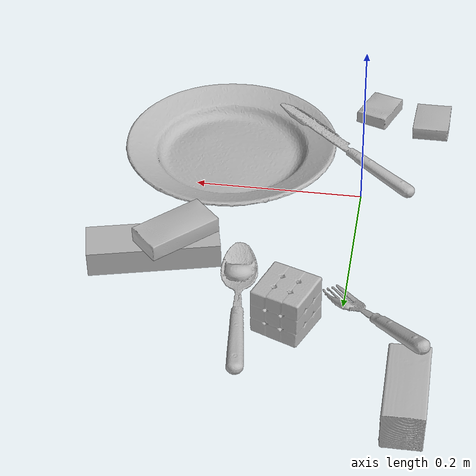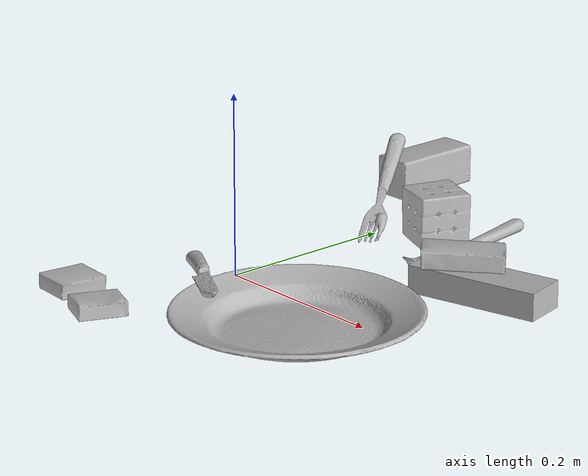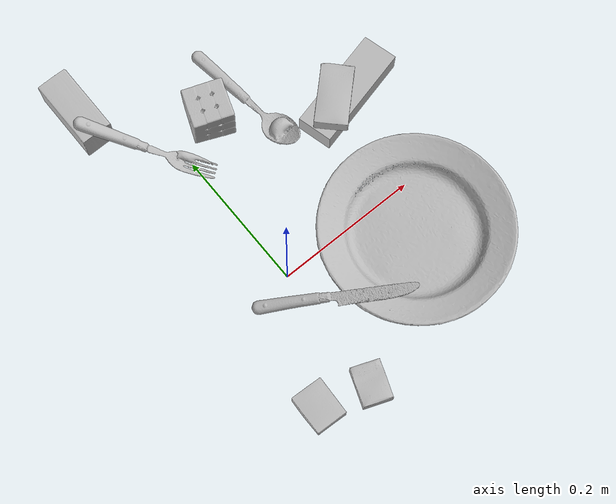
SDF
<sdf version="1.4">
  <world name="default">
    <light name="light1" type="point">
      <pose>0 0 1 0 0 0</pose>
      <diffuse>3 3 3 1</diffuse>
      <specular>3 3 3 1</specular>
    </light>
    <light name="light2" type="point">
      <pose>0 0.5 2 0 0 0</pose>
      <diffuse>1 1 1 1</diffuse>
      <specular>1 1 1 1</specular>
    </light>
    <light name="light3" type="point">
      <pose>0 0.5 2 0 0 0</pose>
      <diffuse>3 3 3 1</diffuse>
      <specular>3 3 3 1</specular>
    </light>
    <scene>
      <ambient>0.7 0.7 0.7</ambient>
    </scene>
    <model name="box11">
      <link name="link_box11">
        <collision name="default">
          <geometry>
            <mesh>
              <uri>model://cracker_box/collision_meshes/collision.obj</uri>
              <scale>0.25 0.25 0.25</scale>
            </mesh>
          </geometry>
          <surface>
            <friction>
              <ode>
                <mu>0.5</mu>
                <mu2>0.5</mu2>
              </ode>
            </friction>
          <contact>
        <ode>
            <max_vel>0</max_vel>
            <min_depth>0.0001</min_depth>
            <kp>1e8</kp>
        </ode>
    </contact></surface>
        </collision>
        <visual name="default">
          <geometry>
            <mesh>
              <uri>model://cracker_box/visual_meshes/visual.dae</uri>
              <scale>0.25 0.25 0.25</scale>
            </mesh>
          </geometry>
        </visual>
        <inertial>
          <mass>0.022244147956371307</mass>
          <pose>0.00023660442093387246 6.358561950037256e-05 -0.00042573834070935845 -0.00031620774024180285 -0.011106489600345375 0.0025467943041161943</pose>
          <inertia>
            <ixx>3.5361988e-06</ixx>
            <iyy>5.838959e-06</iyy>
            <izz>8.33273e-06</izz>
            <ixy>0</ixy>
            <ixz>0</ixz>
            <iyz>0</iyz>
          </inertia>
        </inertial>
      </link>
      <pose>-0.007868805900216103 -0.17541806399822235 0.00909603014588356 -0.014049610790716077 -0.005016619297371106 -1.935342344917872</pose>
    </model>
    <model name="box12">
      <link name="link_box12">
        <collision name="default">
          <geometry>
            <mesh>
              <uri>model://wood_block/collision_meshes/collision.obj</uri>
              <scale>0.5 0.5 0.5</scale>
            </mesh>
          </geometry>
          <surface>
            <friction>
              <ode>
                <mu>0.5</mu>
                <mu2>0.5</mu2>
              </ode>
            </friction>
          <contact>
        <ode>
            <max_vel>0</max_vel>
            <min_depth>0.0001</min_depth>
            <kp>1e8</kp>
        </ode>
    </contact></surface>
        </collision>
        <visual name="default">
          <geometry>
            <mesh>
              <uri>model://wood_block/visual_meshes/visual.dae</uri>
              <scale>0.5 0.5 0.5</scale>
            </mesh>
          </geometry>
        </visual>
        <inertial>
          <mass>0.19826212525367737</mass>
          <pose>-2.9066577553749084e-06 -0.00028540476341731846 0.00013204291462898254 -0.05221087153268513 -0.0051926957009938435 -0.006861378574469354</pose>
          <inertia>
            <ixx>6.632619e-05</ixx>
            <iyy>0.00020952444</iyy>
            <izz>0.0002087407</izz>
            <ixy>0</ixy>
            <ixz>0</ixz>
            <iyz>0</iyz>
          </inertia>
        </inertial>
      </link>
      <pose>-0.0777939185500145 0.3483465015888214 0.022629275918006897 -0.00520882156290259 0.005718759426859827 1.574544739087287</pose>
    </model>
    <model name="box13">
      <link name="link_box13">
        <collision name="default">
          <geometry>
            <mesh>
              <uri>model://pudding_box/collision_meshes/collision.obj</uri>
              <scale>0.5 0.5 0.5</scale>
            </mesh>
          </geometry>
          <surface>
            <friction>
              <ode>
                <mu>0.5</mu>
                <mu2>0.5</mu2>
              </ode>
            </friction>
          <contact>
        <ode>
            <max_vel>0</max_vel>
            <min_depth>0.0001</min_depth>
            <kp>1e8</kp>
        </ode>
    </contact></surface>
        </collision>
        <visual name="default">
          <geometry>
            <mesh>
              <uri>model://pudding_box/visual_meshes/visual.dae</uri>
              <scale>0.5 0.5 0.5</scale>
            </mesh>
          </geometry>
        </visual>
        <inertial>
          <mass>0.049741584807634354</mass>
          <pose>0.00024474109522998333 0.0004033942532259971 -0.0002594413817860186 0.005213101800084814 -0.006603799174386178 0.020079821432586128</pose>
          <inertia>
            <ixx>1.4057575e-05</ixx>
            <iyy>9.458037e-06</iyy>
            <izz>2.0759684e-05</izz>
            <ixy>0</ixy>
            <ixz>0</ixz>
            <iyz>0</iyz>
          </inertia>
        </inertial>
      </link>
      <pose>-0.07648719102144241 -0.15600168704986572 0.009862899780273438 0.022348495898457166 -0.01139171475929281 3.093349490024952</pose>
    </model>
    <model name="box21">
      <link name="link_box21">
        <collision name="default">
          <geometry>
            <mesh>
              <uri>model://rubiks_cube/collision_meshes/collision.obj</uri>
              <scale>1.0 1.0 1.0</scale>
            </mesh>
          </geometry>
          <surface>
            <friction>
              <ode>
                <mu>0.5</mu>
                <mu2>0.5</mu2>
              </ode>
            </friction>
          <contact>
        <ode>
            <max_vel>0</max_vel>
            <min_depth>0.0001</min_depth>
            <kp>1e8</kp>
        </ode>
    </contact></surface>
        </collision>
        <visual name="default">
          <geometry>
            <mesh>
              <uri>model://rubiks_cube/visual_meshes/visual.dae</uri>
              <scale>1.0 1.0 1.0</scale>
            </mesh>
          </geometry>
        </visual>
        <inertial>
          <mass>0.14589080214500427</mass>
          <pose>2.6721043468569405e-05 5.256966323941015e-05 -7.264316082000732e-06 -0.054672881442690106 -0.09814117646273159 -0.034455034483302956</pose>
          <inertia>
            <ixx>8.061447e-05</ixx>
            <iyy>8.023852e-05</iyy>
            <izz>8.128248e-05</izz>
            <ixy>0</ixy>
            <ixz>0</ixz>
            <iyz>0</iyz>
          </inertia>
        </inertial>
      </link>
      <pose>0.05809491127729416 0.23618344962596893 0.02867893874645233 -5.294563298571408e-06 -1.906907796611846e-06 -0.35262796823009623</pose>
    </model>
    <model name="box22">
      <link name="link_box22">
        <collision name="default">
          <geometry>
            <mesh>
              <uri>model://jenga/collision_meshes/collision.obj</uri>
              <scale>1.0 1.0 1.0</scale>
            </mesh>
          </geometry>
          <surface>
            <friction>
              <ode>
                <mu>0.5</mu>
                <mu2>0.5</mu2>
              </ode>
            </friction>
          <contact>
        <ode>
            <max_vel>0</max_vel>
            <min_depth>0.0001</min_depth>
            <kp>1e8</kp>
        </ode>
    </contact></surface>
        </collision>
        <visual name="default">
          <geometry>
            <mesh>
              <uri>model://jenga/visual_meshes/visual.dae</uri>
              <scale>1.0 1.0 1.0</scale>
            </mesh>
          </geometry>
        </visual>
        <inertial>
          <mass>0.13963866233825684</mass>
          <pose>-2.502855807051674e-07 -0.00010250010382151231 -4.092339804628864e-05 0.0 -7.342154049184251e-07 0.0</pose>
          <inertia>
            <ixx>3.8641407e-05</ixx>
            <iyy>0.00026183313</iyy>
            <izz>0.00027952914</izz>
            <ixy>0</ixy>
            <ixz>0</ixz>
            <iyz>0</iyz>
          </inertia>
        </inertial>
      </link>
      <pose>0.22237759828567505 0.14600561559200287 0.015000051818788052 3.0359535335891874e-06 -1.9322109338654457e-07 0.24883408481923694</pose>
    </model>
    <model name="box23">
      <link name="link_box23">
        <collision name="default">
          <geometry>
            <mesh>
              <uri>model://sugar_box/collision_meshes/collision.obj</uri>
              <scale>0.5 0.5 0.5</scale>
            </mesh>
          </geometry>
          <surface>
            <friction>
              <ode>
                <mu>0.5</mu>
                <mu2>0.5</mu2>
              </ode>
            </friction>
          <contact>
        <ode>
            <max_vel>0</max_vel>
            <min_depth>0.0001</min_depth>
            <kp>1e8</kp>
        </ode>
    </contact></surface>
        </collision>
        <visual name="default">
          <geometry>
            <mesh>
              <uri>model://sugar_box/visual_meshes/visual.dae</uri>
              <scale>0.5 0.5 0.5</scale>
            </mesh>
          </geometry>
        </visual>
        <inertial>
          <mass>0.09426560252904892</mass>
          <pose>0.0005171863595023751 1.924554817378521e-05 -0.00018182402709499002 -0.00040462606744182556 0.0010506635219056535 0.0026153790218759383</pose>
          <inertia>
            <ixx>1.963546e-05</ixx>
            <iyy>6.346583e-05</iyy>
            <izz>7.597618e-05</izz>
            <ixy>0</ixy>
            <ixz>0</ixz>
            <iyz>0</iyz>
          </inertia>
        </inertial>
      </link>
      <pose>0.1962524950504303 0.1433410793542862 0.04139920324087143 0.0007370428033226415 -0.023425180249617504 -2.3812670562151146</pose>
    </model>
    <model name="plate1">
      <link name="link_plate1">
        <collision name="default">
          <geometry>
            <mesh>
              <uri>model://plate/collision_meshes/collision.obj</uri>
              <scale>1.0 1.0 1.0</scale>
            </mesh>
          </geometry>
          <surface>
            <friction>
              <ode>
                <mu>0.5</mu>
                <mu2>0.5</mu2>
              </ode>
            </friction>
          <contact>
        <ode>
            <max_vel>0</max_vel>
            <min_depth>0.0001</min_depth>
            <kp>1e8</kp>
        </ode>
    </contact></surface>
        </collision>
        <visual name="default">
          <geometry>
            <mesh>
              <uri>model://plate/visual_meshes/visual.dae</uri>
              <scale>1.0 1.0 1.0</scale>
            </mesh>
          </geometry>
        </visual>
        <inertial>
          <mass>0.11197491735219955</mass>
          <pose>-0.0006044617621228099 0.00027825823053717613 -0.001056199544109404 0.00221882520869589 -0.003225452482750881 0.45259630068278056</pose>
          <inertia>
            <ixx>0.0005238209</ixx>
            <iyy>0.00051881076</iyy>
            <izz>0.0010245154</izz>
            <ixy>0</ixy>
            <ixz>0</ixz>
            <iyz>0</iyz>
          </inertia>
        </inertial>
      </link>
      <pose>0.16665959358215332 -0.05853996425867081 0.01373299490660429 -4.0518355003822464e-08 -1.9449853582151868e-07 -0.4213658771966097</pose>
    </model>
    <model name="silverware1">
      <link name="link_silverware1">
        <collision name="default">
          <geometry>
            <mesh>
              <uri>model://knife/collision_meshes/collision.obj</uri>
              <scale>1.0 1.0 1.0</scale>
            </mesh>
          </geometry>
          <surface>
            <friction>
              <ode>
                <mu>0.5</mu>
                <mu2>0.5</mu2>
              </ode>
            </friction>
          <contact>
        <ode>
            <max_vel>0</max_vel>
            <min_depth>0.0001</min_depth>
            <kp>1e8</kp>
        </ode>
    </contact></surface>
        </collision>
        <visual name="default">
          <geometry>
            <mesh>
              <uri>model://knife/visual_meshes/visual.dae</uri>
              <scale>1.0 1.0 1.0</scale>
            </mesh>
          </geometry>
        </visual>
        <inertial>
          <mass>0.01465720683336258</mass>
          <pose>-0.023785248398780823 0.0015275123296305537 5.062019408796914e-05 0.07304601322977639 0.017248415474028462 -0.007409829977624996</pose>
          <inertia>
            <ixx>4.1603096e-07</ixx>
            <iyy>5.6310615e-05</iyy>
            <izz>5.6444613e-05</izz>
            <ixy>0</ixy>
            <ixz>0</ixz>
            <iyz>0</iyz>
          </inertia>
        </inertial>
      </link>
      <pose>0.024673687294125557 -0.0655079185962677 0.023620828986167908 0.10466762718313204 -0.1755317232676916 -0.5964249662138075</pose>
    </model>
    <model name="silverware2">
      <link name="link_silverware2">
        <collision name="default">
          <geometry>
            <mesh>
              <uri>model://spoon/collision_meshes/collision.obj</uri>
              <scale>1.0 1.0 1.0</scale>
            </mesh>
          </geometry>
          <surface>
            <friction>
              <ode>
                <mu>0.5</mu>
                <mu2>0.5</mu2>
              </ode>
            </friction>
          <contact>
        <ode>
            <max_vel>0</max_vel>
            <min_depth>0.0001</min_depth>
            <kp>1e8</kp>
        </ode>
    </contact></surface>
        </collision>
        <visual name="default">
          <geometry>
            <mesh>
              <uri>model://spoon/visual_meshes/visual.dae</uri>
              <scale>1.0 1.0 1.0</scale>
            </mesh>
          </geometry>
        </visual>
        <inertial>
          <mass>0.03463635593652725</mass>
          <pose>-0.005526320077478886 -0.0016034176805987954 -0.0007271658396348357 0.035218626746325574 -0.03906584480927328 0.006150611928774215</pose>
          <inertia>
            <ixx>1.9265303e-06</ixx>
            <iyy>0.0001317902</iyy>
            <izz>0.00013274024</izz>
            <ixy>0</ixy>
            <ixz>0</ixz>
            <iyz>0</iyz>
          </inertia>
        </inertial>
      </link>
      <pose>0.11431276798248291 0.2277727723121643 0.00838526338338852 0.006729673426216713 0.026892877886579222 -1.4396721770317364</pose>
    </model>
    <model name="silverware3">
      <link name="link_silverware3">
        <collision name="default">
          <geometry>
            <mesh>
              <uri>model://fork/collision_meshes/collision.obj</uri>
              <scale>1.0 1.0 1.0</scale>
            </mesh>
          </geometry>
          <surface>
            <friction>
              <ode>
                <mu>0.5</mu>
                <mu2>0.5</mu2>
              </ode>
            </friction>
          <contact>
        <ode>
            <max_vel>0</max_vel>
            <min_depth>0.0001</min_depth>
            <kp>1e8</kp>
        </ode>
    </contact></surface>
        </collision>
        <visual name="default">
          <geometry>
            <mesh>
              <uri>model://fork/visual_meshes/visual.dae</uri>
              <scale>1.0 1.0 1.0</scale>
            </mesh>
          </geometry>
        </visual>
        <inertial>
          <mass>0.019285527989268303</mass>
          <pose>-0.029570043087005615 0.0004658823017962277 0.0003218861238565296 -0.013551447953525298 -0.010977835959949084 0.014453901308334693</pose>
          <inertia>
            <ixx>6.760669e-07</ixx>
            <iyy>5.0348972e-05</iyy>
            <izz>5.065136e-05</izz>
            <ixy>0</ixy>
            <ixz>0</ixz>
            <iyz>0</iyz>
          </inertia>
        </inertial>
      </link>
      <pose>-0.03845525160431862 0.24701367318630219 0.02976515144109726 0.12011060683627342 0.35471291008964845 -0.9317440598988015</pose>
    </model>
  <physics type="ode">
      <max_contacts>50</max_contacts>
      <ode>
        <solver>
          <type>quick</type>
          <iters>75</iters>
        </solver>
        <constraints>
          <contact_max_correcting_vel>0</contact_max_correcting_vel>
          <contact_surface_layer>0</contact_surface_layer>
        </constraints>
      </ode>
    </physics></world>
</sdf>
